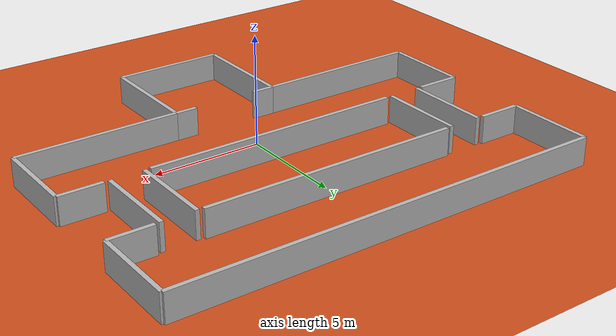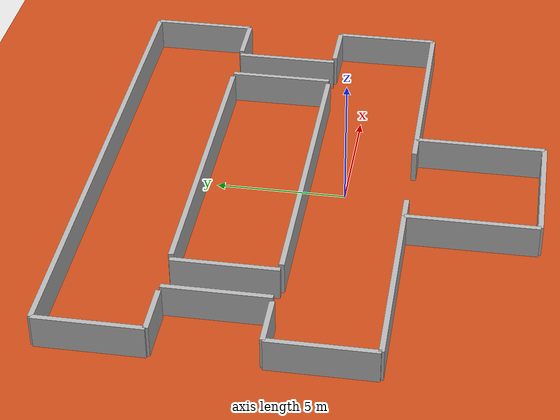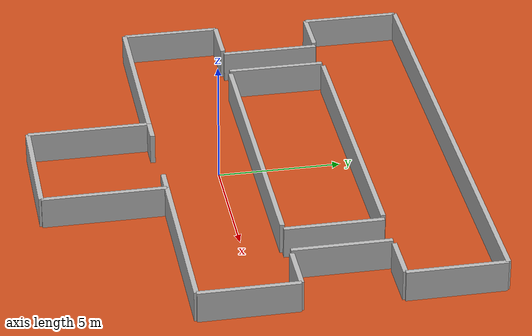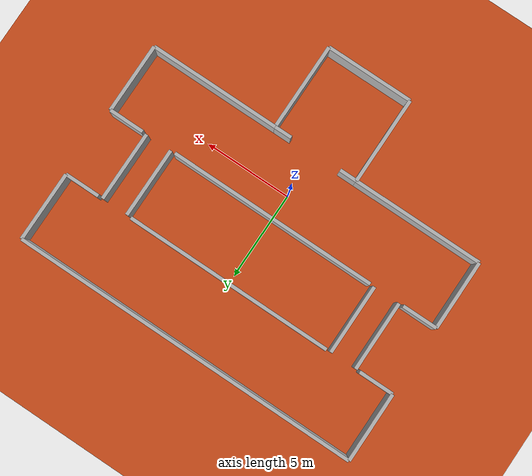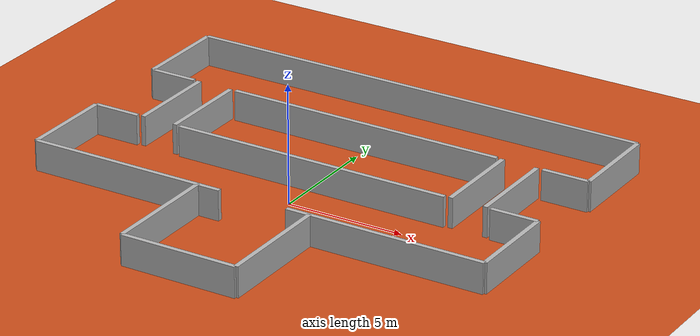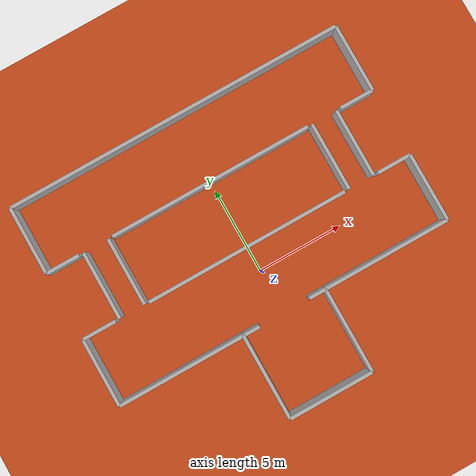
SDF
<?xml version="1.0" ?>
<sdf version="1.6">
  <world name="mars">

    <!-- Licht -->
    <light type="directional" name="sun">
      <cast_shadows>true</cast_shadows>
      <pose>0 0 10 0 0 0</pose>
      <intensity>1</intensity>
      <direction>-1 -1 -1</direction>
      <diffuse>0.8 0.4 0.2 1</diffuse>
      <specular>0.1 0.1 0.1 1</specular>
      <attenuation>
        <range>10</range>
        <linear>1</linear>
        <constant>1</constant>
        <quadratic>0</quadratic>
      </attenuation>
    </light>

    <model name="ground_plane">
      <static>true</static>
      <link name="link">
        <collision name="collision">
          <geometry><plane><normal>0 0 1</normal><size>100 100</size></plane></geometry>
        </collision>
        <visual name="visual">
          <geometry><plane><normal>0 0 1</normal><size>100 100</size></plane></geometry>
          <material><ambient>0.4 0.2 0.1 1</ambient><diffuse>0.8 0.3 0.1 1</diffuse></material>
        </visual>
      </link>
    </model>

    <model name="station_walls">
      <static>true</static>
      <link name="walls">

        <collision name="rm_s"><pose>0 -7.5 0.5 0 0 0</pose><geometry><box><size>5 0.2 1.5</size></box></geometry></collision>
        <visual name="v_rm_s"><pose>0 -7.5 0.5 0 0 0</pose><geometry><box><size>5 0.2 1.5</size></box></geometry></visual>

        <collision name="rm_e"><pose>2.5 -5 0.5 0 0 1.57</pose><geometry><box><size>5 0.2 1.5</size></box></geometry></collision>
        <visual name="v_rm_e"><pose>2.5 -5 0.5 0 0 1.57</pose><geometry><box><size>5 0.2 1.5</size></box></geometry></visual>

        <collision name="rm_w"><pose>-2.5 -5 0.5 0 0 1.57</pose><geometry><box><size>5 0.2 1.5</size></box></geometry></collision>
        <visual name="v_rm_w"><pose>-2.5 -5 0.5 0 0 1.57</pose><geometry><box><size>5 0.2 1.5</size></box></geometry></visual>

        <collision name="rm_n1"><pose>-2 -2.5 0.5 0 0 0</pose><geometry><box><size>1 0.2 1.5</size></box></geometry></collision>
        <collision name="rm_n3"><pose>2 -2.5 0.5 0 0 0</pose><geometry><box><size>1 0.2 1.5</size></box></geometry></collision>
        <visual name="v_rm_n1"><pose>-2 -2.5 0.5 0 0 0</pose><geometry><box><size>1 0.2 1.5</size></box></geometry></visual>
        <visual name="v_rm_n3"><pose>2 -2.5 0.5 0 0 0</pose><geometry><box><size>1 0.2 1.5</size></box></geometry></visual>

        <collision name="h1_s_l"><pose>-6.25 -2.5 0.5 0 0 0</pose><geometry><box><size>7.5 0.2 1.5</size></box></geometry></collision>
        <collision name="h1_s_r"><pose>6.25 -2.5 0.5 0 0 0</pose><geometry><box><size>7.5 0.2 1.5</size></box></geometry></collision>
        <visual name="v_h1_s_l"><pose>-6.25 -2.5 0.5 0 0 0</pose><geometry><box><size>7.5 0.2 1.5</size></box></geometry></visual>
        <visual name="v_h1_s_r"><pose>6.25 -2.5 0.5 0 0 0</pose><geometry><box><size>7.5 0.2 1.5</size></box></geometry></visual>

        <collision name="h1_n_l"><pose>-9 1.5 0.5 0 0 0</pose><geometry><box><size>2 0.2 1.5</size></box></geometry></collision>
        <collision name="h1_n_m"><pose>0 1.5 0.5 0 0 0</pose><geometry><box><size>12 0.2 1.5</size></box></geometry></collision>
        <collision name="h1_n_r"><pose>9 1.5 0.5 0 0 0</pose><geometry><box><size>2 0.2 1.5</size></box></geometry></collision>
        <visual name="v_h1_n_l"><pose>-9 1.5 0.5 0 0 0</pose><geometry><box><size>2 0.2 1.5</size></box></geometry></visual>
        <visual name="v_h1_n_m"><pose>0 1.5 0.5 0 0 0</pose><geometry><box><size>12 0.2 1.5</size></box></geometry></visual>
        <visual name="v_h1_n_r"><pose>9 1.5 0.5 0 0 0</pose><geometry><box><size>2 0.2 1.5</size></box></geometry></visual>

        <collision name="c_w_l"><pose>-7.75 3.5 0.5 0 0 1.57</pose><geometry><box><size>4 0.2 1.5</size></box></geometry></collision>
        <collision name="c_w_r"><pose>-6.25 3.5 0.5 0 0 1.57</pose><geometry><box><size>4 0.2 1.5</size></box></geometry></collision>
        <visual name="v_c_w_l"><pose>-7.75 3.5 0.5 0 0 1.57</pose><geometry><box><size>4 0.2 1.5</size></box></geometry></visual>
        <visual name="v_c_w_r"><pose>-6.25 3.5 0.5 0 0 1.57</pose><geometry><box><size>4 0.2 1.5</size></box></geometry></visual>

        <collision name="c_e_l"><pose>6.25 3.5 0.5 0 0 1.57</pose><geometry><box><size>4 0.2 1.5</size></box></geometry></collision>
        <collision name="c_e_r"><pose>7.75 3.5 0.5 0 0 1.57</pose><geometry><box><size>4 0.2 1.5</size></box></geometry></collision>
        <visual name="v_c_e_l"><pose>6.25 3.5 0.5 0 0 1.57</pose><geometry><box><size>4 0.2 1.5</size></box></geometry></visual>
        <visual name="v_c_e_r"><pose>7.75 3.5 0.5 0 0 1.57</pose><geometry><box><size>4 0.2 1.5</size></box></geometry></visual>

        <collision name="h2_n"><pose>0 9.5 0.5 0 0 0</pose><geometry><box><size>20 0.2 1.5</size></box></geometry></collision>
        <visual name="v_h2_n"><pose>0 9.5 0.5 0 0 0</pose><geometry><box><size>20 0.2 1.5</size></box></geometry></visual>

        <collision name="h2_s_l"><pose>-9 5.5 0.5 0 0 0</pose><geometry><box><size>2 0.2 1.5</size></box></geometry></collision>
        <collision name="h2_s_m"><pose>0 5.5 0.5 0 0 0</pose><geometry><box><size>12 0.2 1.5</size></box></geometry></collision>
        <collision name="h2_s_r"><pose>9 5.5 0.5 0 0 0</pose><geometry><box><size>2 0.2 1.5</size></box></geometry></collision>
        <visual name="v_h2_s_l"><pose>-9 5.5 0.5 0 0 0</pose><geometry><box><size>2 0.2 1.5</size></box></geometry></visual>
        <visual name="v_h2_s_m"><pose>0 5.5 0.5 0 0 0</pose><geometry><box><size>12 0.2 1.5</size></box></geometry></visual>
        <visual name="v_h2_s_r"><pose>9 5.5 0.5 0 0 0</pose><geometry><box><size>2 0.2 1.5</size></box></geometry></visual>

        <collision name="h_end_w1"><pose>-10 -0.5 0.5 0 0 1.57</pose><geometry><box><size>4 0.2 1.5</size></box></geometry></collision>
        <collision name="h_end_e1"><pose>10 -0.5 0.5 0 0 1.57</pose><geometry><box><size>4 0.2 1.5</size></box></geometry></collision>
        <collision name="h_end_w2"><pose>-10 7.5 0.5 0 0 1.57</pose><geometry><box><size>4 0.2 1.5</size></box></geometry></collision>
        <collision name="h_end_e2"><pose>10 7.5 0.5 0 0 1.57</pose><geometry><box><size>4 0.2 1.5</size></box></geometry></collision>
        <visual name="v_h_end_w1"><pose>-10 -0.5 0.5 0 0 1.57</pose><geometry><box><size>4 0.2 1.5</size></box></geometry></visual>
        <visual name="v_h_end_e1"><pose>10 -0.5 0.5 0 0 1.57</pose><geometry><box><size>4 0.2 1.5</size></box></geometry></visual>
        <visual name="v_h_end_w2"><pose>-10 7.5 0.5 0 0 1.57</pose><geometry><box><size>4 0.2 1.5</size></box></geometry></visual>
        <visual name="v_h_end_e2"><pose>10 7.5 0.5 0 0 1.57</pose><geometry><box><size>4 0.2 1.5</size></box></geometry></visual>

      </link>
    </model>

    <plugin filename="gz-sim-physics-system" name="gz::sim::systems::Physics"/>
    <plugin filename="gz-sim-user-commands-system" name="gz::sim::systems::UserCommands"/>
    <plugin filename="gz-sim-scene-broadcaster-system" name="gz::sim::systems::SceneBroadcaster"/>
    <plugin filename="gz-sim-sensors-system" name="gz::sim::systems::Sensors">
    <render_engine>ogre2</render_engine>
    </plugin>
    <plugin filename="gz-sim-imu-system" name="gz::sim::systems::Imu"/>
  </world>
</sdf>
